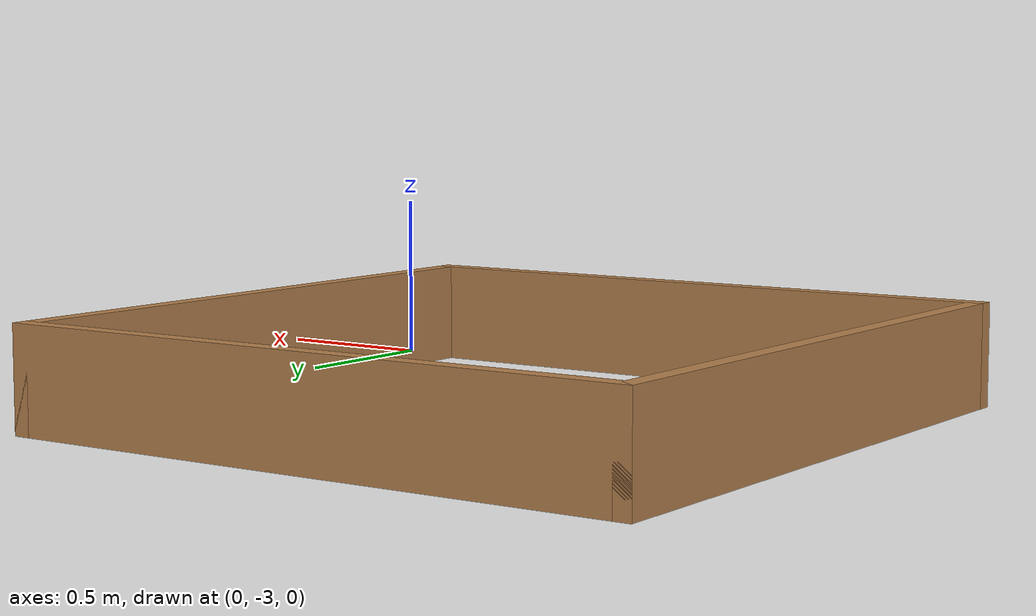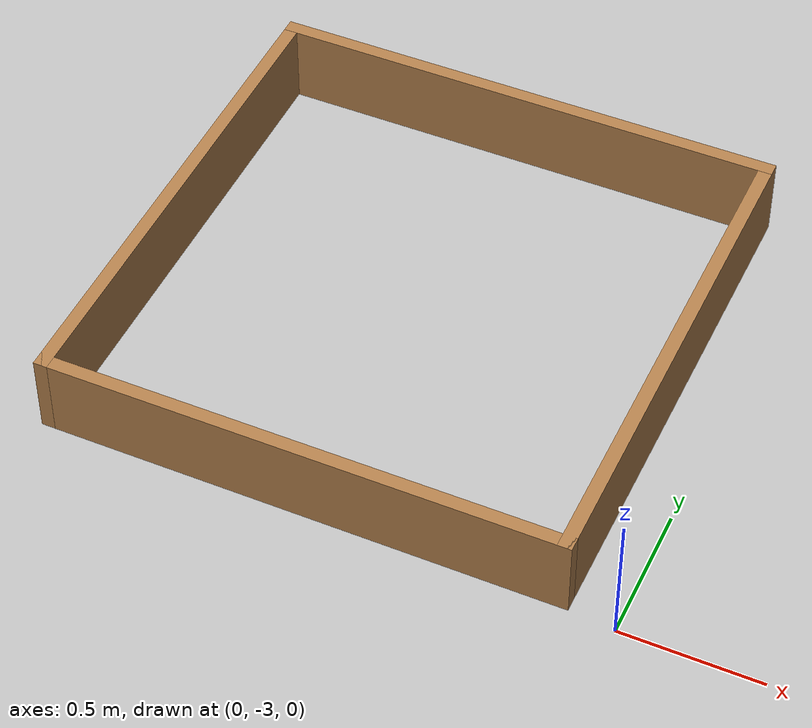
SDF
<?xml version='1.0'?>
<sdf version='1.7'>
  <model name='square2m'>
    <pose>-1.0325 -1.4925 0 0 -0 0</pose>
    <link name='Wall_0'>
      <collision name='Wall_0_Collision'>
        <geometry>
          <box>
            <size>1.9 0.05 0.3</size>
          </box>
        </geometry>
        <pose>0 0 0.15 0 -0 0</pose>
      </collision>
      <visual name='Wall_0_Visual'>
        <pose>0 0 0.15 0 -0 0</pose>
        <geometry>
          <box>
            <size>1.9 0.05 0.3</size>
          </box>
        </geometry>
        <material>
          <script>
            <uri>file://media/materials/scripts/gazebo.material</uri>
            <name>Gazebo/Wood</name>
          </script>
          <ambient>1 1 1 1</ambient>
        </material>
        <meta>
          <layer>0</layer>
        </meta>
      </visual>
      <pose>-0.0825 0.3825 0 0 -0 0</pose>
    </link>
    <link name='Wall_1'>
      <collision name='Wall_1_Collision'>
        <geometry>
          <box>
            <size>1.9 0.05 0.3</size>
          </box>
        </geometry>
        <pose>0 0 0.15 0 -0 0</pose>
      </collision>
      <visual name='Wall_1_Visual'>
        <pose>0 0 0.15 0 -0 0</pose>
        <geometry>
          <box>
            <size>1.9 0.05 0.3</size>
          </box>
        </geometry>
        <material>
          <script>
            <uri>file://media/materials/scripts/gazebo.material</uri>
            <name>Gazebo/Wood</name>
          </script>
          <ambient>1 1 1 1</ambient>
        </material>
        <meta>
          <layer>0</layer>
        </meta>
      </visual>
      <pose>0.8425 -0.5425 0 0 -0 -1.5708</pose>
    </link>
    <link name='Wall_2'>
      <collision name='Wall_2_Collision'>
        <geometry>
          <box>
            <size>1.9 0.05 0.3</size>
          </box>
        </geometry>
        <pose>0 0 0.15 0 -0 0</pose>
      </collision>
      <visual name='Wall_2_Visual'>
        <pose>0 0 0.15 0 -0 0</pose>
        <geometry>
          <box>
            <size>1.9 0.05 0.3</size>
          </box>
        </geometry>
        <material>
          <script>
            <uri>file://media/materials/scripts/gazebo.material</uri>
            <name>Gazebo/Wood</name>
          </script>
          <ambient>1 1 1 1</ambient>
        </material>
        <meta>
          <layer>0</layer>
        </meta>
      </visual>
      <pose>-0.0825 -1.4675 0 0 -0 3.14159</pose>
    </link>
    <link name='Wall_3'>
      <collision name='Wall_3_Collision'>
        <geometry>
          <box>
            <size>1.9 0.05 0.3</size>
          </box>
        </geometry>
        <pose>0 0 0.15 0 -0 0</pose>
      </collision>
      <visual name='Wall_3_Visual'>
        <pose>0 0 0.15 0 -0 0</pose>
        <geometry>
          <box>
            <size>1.9 0.05 0.3</size>
          </box>
        </geometry>
        <material>
          <script>
            <uri>file://media/materials/scripts/gazebo.material</uri>
            <name>Gazebo/Wood</name>
          </script>
          <ambient>1 1 1 1</ambient>
        </material>
        <meta>
          <layer>0</layer>
        </meta>
      </visual>
      <pose>-1.0075 -0.5425 0 0 -0 1.5708</pose>
    </link>
    <static>1</static>
  </model>
</sdf>
